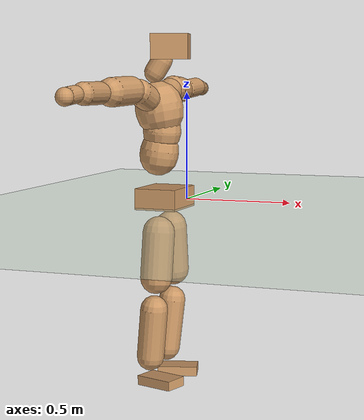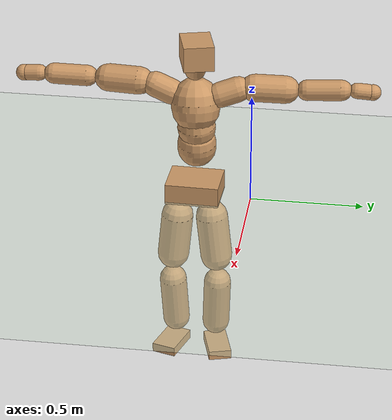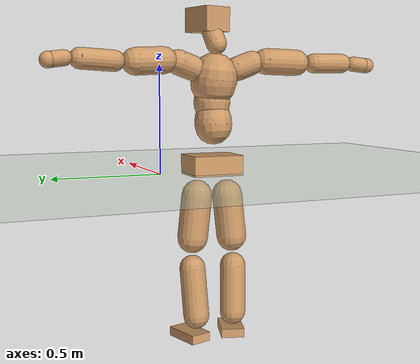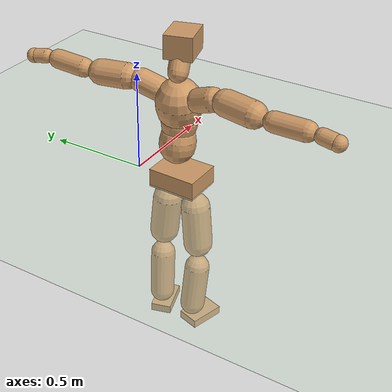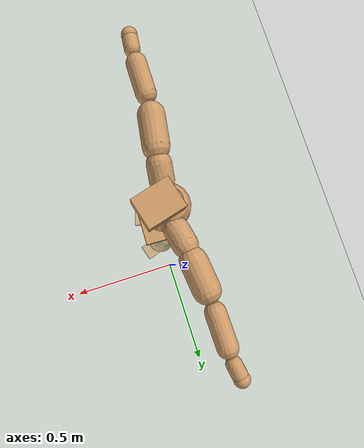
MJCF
<mujoco model="humanoid">
  <compiler coordinate="local" angle="radian"/>
  <default>
    <joint damping="0.0" armature="0.01" stiffness="0.0" limited="true"/>
    <geom conaffinity="1" condim="3" contype="7" margin="0.001" rgba="0.8 0.6 .4 1"/>
  </default>
  <asset>
    <texture type="skybox" builtin="gradient" rgb1=".4 .5 .6" rgb2="0 0 0" width="100" height="100"/>
    <texture builtin="flat" height="1278" mark="cross" markrgb="1 1 1" name="texgeom" random="0.01" rgb1="0.8 0.6 0.4" rgb2="0.8 0.6 0.4" type="cube" width="127"/>
    <texture builtin="checker" height="100" name="texplane" rgb1="0 0 0" rgb2="0.8 0.8 0.8" type="2d" width="100"/>
    <material name="MatPlane" reflectance="0.5" shininess="1" specular="1" texrepeat="60 60" texture="texplane"/>
    <material name="geom" texture="texgeom" texuniform="true"/>
  </asset>
  <worldbody>
    <light cutoff="100" diffuse="1 1 1" dir="-0 0 -1.3" directional="true" exponent="1" pos="0 0 1.3" specular=".1 .1 .1"/>
    <geom conaffinity="1" condim="3" name="floor" pos="0 0 0" rgba="0.8 0.9 0.8 1" size="100 100 .2" type="plane" material="MatPlane"/>
    <body name="Pelvis" pos="-0.0001 -0.2533 0.044">
      <freejoint name="Pelvis"/>
      <geom type="box" contype="1" conaffinity="1" density="500" pos="-0.0128 0.0003 -0.0078" size="0.0954 0.1195 0.0469" quat="0.9999 0.0000 0.0000 -0.0135" name="Pelvis"/>
      <body name="L_Hip" pos="-0.0139 0.0699 -0.0814">
        <joint name="L_Hip_x" type="hinge" pos="0 0 0" axis="1 0 0" stiffness="800" damping="80" armature="0.02" range="-180.0000 180.0000"/>
        <joint name="L_Hip_y" type="hinge" pos="0 0 0" axis="0 1 0" stiffness="800" damping="80" armature="0.02" range="-180.0000 180.0000"/>
        <joint name="L_Hip_z" type="hinge" pos="0 0 0" axis="0 0 1" stiffness="800" damping="80" armature="0.02" range="-180.0000 180.0000"/>
        <geom type="capsule" contype="1" conaffinity="1" density="500" fromto="0.0005 0.0074 -0.0678 0.0022 0.0295 -0.2711" size="0.0715" name="L_Hip"/>
        <body name="L_Knee" pos="0.0027 0.0369 -0.3388">
          <joint name="L_Knee_x" type="hinge" pos="0 0 0" axis="1 0 0" stiffness="800" damping="80" armature="0.02" range="-180.0000 180.0000"/>
          <joint name="L_Knee_y" type="hinge" pos="0 0 0" axis="0 1 0" stiffness="800" damping="80" armature="0.02" range="-180.0000 180.0000"/>
          <joint name="L_Knee_z" type="hinge" pos="0 0 0" axis="0 0 1" stiffness="800" damping="80" armature="0.02" range="-180.0000 180.0000"/>
          <geom type="capsule" contype="1" conaffinity="1" density="500" fromto="-0.0080 -0.0032 -0.0756 -0.0321 -0.0127 -0.3026" size="0.0612" name="L_Knee"/>
          <body name="L_Ankle" pos="-0.0401 -0.0159 -0.3782">
            <joint name="L_Ankle_x" type="hinge" pos="0 0 0" axis="1 0 0" stiffness="800" damping="80" armature="0.02" range="-180.0000 180.0000"/>
            <joint name="L_Ankle_y" type="hinge" pos="0 0 0" axis="0 1 0" stiffness="800" damping="80" armature="0.02" range="-180.0000 180.0000"/>
            <joint name="L_Ankle_z" type="hinge" pos="0 0 0" axis="0 0 1" stiffness="800" damping="80" armature="0.02" range="-180.0000 180.0000"/>
            <geom type="box" contype="1" conaffinity="1" density="500" pos="0.0594 0.0171 -0.0278" size="0.0906 0.0513 0.0213" quat="0.9902 0.0000 0.0000 0.1397" name="L_Ankle"/>
            <body name="L_Toe" pos="0.1187 0.0342 -0.0555">
              <joint name="L_Toe_x" type="hinge" pos="0 0 0" axis="1 0 0" stiffness="500" damping="50" armature="0.02" range="-180.0000 180.0000"/>
              <joint name="L_Toe_y" type="hinge" pos="0 0 0" axis="0 1 0" stiffness="500" damping="50" armature="0.02" range="-180.0000 180.0000"/>
              <joint name="L_Toe_z" type="hinge" pos="0 0 0" axis="0 0 1" stiffness="500" damping="50" armature="0.02" range="-180.0000 180.0000"/>
              <geom type="box" contype="1" conaffinity="1" density="500" pos="0.0000 0.0000 0.0259" size="0.0011 0.0025 0.001" quat="0.9894 0.0000 0.0000 0.1451" name="L_Toe"/>
            </body>
          </body>
        </body>
      </body>
      <body name="R_Hip" pos="-0.0101 -0.0716 -0.0873">
        <joint name="R_Hip_x" type="hinge" pos="0 0 0" axis="1 0 0" stiffness="800" damping="80" armature="0.02" range="-180.0000 180.0000"/>
        <joint name="R_Hip_y" type="hinge" pos="0 0 0" axis="0 1 0" stiffness="800" damping="80" armature="0.02" range="-180.0000 180.0000"/>
        <joint name="R_Hip_z" type="hinge" pos="0 0 0" axis="0 0 1" stiffness="800" damping="80" armature="0.02" range="-180.0000 180.0000"/>
        <geom type="capsule" contype="1" conaffinity="1" density="500" fromto="-0.0017 -0.0070 -0.0677 -0.0067 -0.0278 -0.2710" size="0.071" name="R_Hip"/>
        <body name="R_Knee" pos="-0.0084 -0.0348 -0.3387">
          <joint name="R_Knee_x" type="hinge" pos="0 0 0" axis="1 0 0" stiffness="800" damping="80" armature="0.02" range="-180.0000 180.0000"/>
          <joint name="R_Knee_y" type="hinge" pos="0 0 0" axis="0 1 0" stiffness="800" damping="80" armature="0.02" range="-180.0000 180.0000"/>
          <joint name="R_Knee_z" type="hinge" pos="0 0 0" axis="0 0 1" stiffness="800" damping="80" armature="0.02" range="-180.0000 180.0000"/>
          <geom type="capsule" contype="1" conaffinity="1" density="500" fromto="-0.0076 0.0035 -0.0741 -0.0304 0.0140 -0.2965" size="0.0612" name="R_Knee"/>
          <body name="R_Ankle" pos="-0.0381 0.0175 -0.3706">
            <joint name="R_Ankle_x" type="hinge" pos="0 0 0" axis="1 0 0" stiffness="800" damping="80" armature="0.02" range="-180.0000 180.0000"/>
            <joint name="R_Ankle_y" type="hinge" pos="0 0 0" axis="0 1 0" stiffness="800" damping="80" armature="0.02" range="-180.0000 180.0000"/>
            <joint name="R_Ankle_z" type="hinge" pos="0 0 0" axis="0 0 1" stiffness="800" damping="80" armature="0.02" range="-180.0000 180.0000"/>
            <geom type="box" contype="1" conaffinity="1" density="500" pos="0.0627 -0.0188 -0.0276" size="0.0876 0.055 0.0211" quat="0.9894 0.0000 0.0000 -0.1450" name="R_Ankle"/>
            <body name="R_Toe" pos="0.1255 -0.0376 -0.0552">
              <joint name="R_Toe_x" type="hinge" pos="0 0 0" axis="1 0 0" stiffness="500" damping="50" armature="0.02" range="-180.0000 180.0000"/>
              <joint name="R_Toe_y" type="hinge" pos="0 0 0" axis="0 1 0" stiffness="500" damping="50" armature="0.02" range="-180.0000 180.0000"/>
              <joint name="R_Toe_z" type="hinge" pos="0 0 0" axis="0 0 1" stiffness="500" damping="50" armature="0.02" range="-180.0000 180.0000"/>
              <geom type="box" contype="1" conaffinity="1" density="500" pos="0.0000 0.0000 0.0274" size="0.0012 0.0027 0.001" quat="0.9908 0.0000 0.0000 -0.1356" name="R_Toe"/>
            </body>
          </body>
        </body>
      </body>
      <body name="Torso" pos="-0.0526 0.0038 0.1219">
        <joint name="Torso_x" type="hinge" pos="0 0 0" axis="1 0 0" stiffness="1000" damping="100" armature="0.02" range="-180.0000 180.0000"/>
        <joint name="Torso_y" type="hinge" pos="0 0 0" axis="0 1 0" stiffness="1000" damping="100" armature="0.02" range="-180.0000 180.0000"/>
        <joint name="Torso_z" type="hinge" pos="0 0 0" axis="0 0 1" stiffness="1000" damping="100" armature="0.02" range="-180.0000 180.0000"/>
        <geom type="capsule" contype="1" conaffinity="1" density="500" fromto="0.0135 0.0022 0.0813 0.0090 0.0015 0.0542" size="0.0865" name="Torso"/>
        <body name="Spine" pos="0.0226 0.0037 0.1355">
          <joint name="Spine_x" type="hinge" pos="0 0 0" axis="1 0 0" stiffness="1000" damping="100" armature="0.02" range="-180.0000 180.0000"/>
          <joint name="Spine_y" type="hinge" pos="0 0 0" axis="0 1 0" stiffness="1000" damping="100" armature="0.02" range="-180.0000 180.0000"/>
          <joint name="Spine_z" type="hinge" pos="0 0 0" axis="0 0 1" stiffness="1000" damping="100" armature="0.02" range="-180.0000 180.0000"/>
          <geom type="capsule" contype="1" conaffinity="1" density="500" fromto="0.0036 -0.0015 0.0339 0.0024 -0.0010 0.0226" size="0.0849" name="Spine"/>
          <body name="Chest" pos="0.006 -0.0024 0.0565">
            <joint name="Chest_x" type="hinge" pos="0 0 0" axis="1 0 0" stiffness="1000" damping="100" armature="0.02" range="-180.0000 180.0000"/>
            <joint name="Chest_y" type="hinge" pos="0 0 0" axis="0 1 0" stiffness="1000" damping="100" armature="0.02" range="-180.0000 180.0000"/>
            <joint name="Chest_z" type="hinge" pos="0 0 0" axis="0 0 1" stiffness="1000" damping="100" armature="0.02" range="-180.0000 180.0000"/>
            <geom type="capsule" contype="1" conaffinity="1" density="500" fromto="-0.0170 -0.0047 0.0894 -0.0114 -0.0032 0.0596" size="0.1077" name="Chest"/>
            <body name="Neck" pos="-0.0427 -0.0116 0.2175">
              <joint name="Neck_x" type="hinge" pos="0 0 0" axis="1 0 0" stiffness="500" damping="50" armature="0.02" range="-180.0000 180.0000"/>
              <joint name="Neck_y" type="hinge" pos="0 0 0" axis="0 1 0" stiffness="500" damping="50" armature="0.02" range="-180.0000 180.0000"/>
              <joint name="Neck_z" type="hinge" pos="0 0 0" axis="0 0 1" stiffness="500" damping="50" armature="0.02" range="-180.0000 180.0000"/>
              <geom type="capsule" contype="1" conaffinity="1" density="500" fromto="0.0102 0.0025 0.0173 0.0410 0.0098 0.0692" size="0.0473" name="Neck"/>
              <body name="Head" pos="0.0512 0.0123 0.0865">
                <joint name="Head_x" type="hinge" pos="0 0 0" axis="1 0 0" stiffness="500" damping="50" armature="0.02" range="-180.0000 180.0000"/>
                <joint name="Head_y" type="hinge" pos="0 0 0" axis="0 1 0" stiffness="500" damping="50" armature="0.02" range="-180.0000 180.0000"/>
                <joint name="Head_z" type="hinge" pos="0 0 0" axis="0 0 1" stiffness="500" damping="50" armature="0.02" range="-180.0000 180.0000"/>
                <geom type="box" contype="1" conaffinity="1" density="500" pos="0.0266 0.0071 0.0442" size="0.0829 0.0666 0.0558" quat="0.9914 0.0000 0.0000 0.1306" name="Head"/>
              </body>
            </body>
            <body name="L_Thorax" pos="-0.017 0.0748 0.1157">
              <joint name="L_Thorax_x" type="hinge" pos="0 0 0" axis="1 0 0" stiffness="500" damping="50" armature="0.02" range="-180.0000 180.0000"/>
              <joint name="L_Thorax_y" type="hinge" pos="0 0 0" axis="0 1 0" stiffness="500" damping="50" armature="0.02" range="-180.0000 180.0000"/>
              <joint name="L_Thorax_z" type="hinge" pos="0 0 0" axis="0 0 1" stiffness="500" damping="50" armature="0.02" range="-180.0000 180.0000"/>
              <geom type="capsule" contype="1" conaffinity="1" density="500" fromto="-0.0048 0.0264 0.0088 -0.0190 0.1054 0.0354" size="0.0568" name="L_Thorax"/>
              <body name="L_Shoulder" pos="-0.0238 0.1318 0.0442">
                <joint name="L_Shoulder_x" type="hinge" pos="0 0 0" axis="1 0 0" stiffness="500" damping="50" armature="0.02" range="-720.0000 720.0000"/>
                <joint name="L_Shoulder_y" type="hinge" pos="0 0 0" axis="0 1 0" stiffness="500" damping="50" armature="0.02" range="-720.0000 720.0000"/>
                <joint name="L_Shoulder_z" type="hinge" pos="0 0 0" axis="0 0 1" stiffness="500" damping="50" armature="0.02" range="-720.0000 720.0000"/>
                <geom type="capsule" contype="1" conaffinity="1" density="500" fromto="-0.0052 0.0448 -0.0023 -0.0207 0.1790 -0.0090" size="0.0612" name="L_Shoulder"/>
                <body name="L_Elbow" pos="-0.0259 0.2238 -0.0113">
                  <joint name="L_Elbow_x" type="hinge" pos="0 0 0" axis="1 0 0" stiffness="500" damping="50" armature="0.02" range="-720.0000 720.0000"/>
                  <joint name="L_Elbow_y" type="hinge" pos="0 0 0" axis="0 1 0" stiffness="500" damping="50" armature="0.02" range="-720.0000 720.0000"/>
                  <joint name="L_Elbow_z" type="hinge" pos="0 0 0" axis="0 0 1" stiffness="500" damping="50" armature="0.02" range="-720.0000 720.0000"/>
                  <geom type="capsule" contype="1" conaffinity="1" density="500" fromto="-0.0005 0.0496 0.0029 -0.0019 0.1983 0.0118" size="0.0464" name="L_Elbow"/>
                  <body name="L_Wrist" pos="-0.0023 0.2479 0.0147">
                    <joint name="L_Wrist_x" type="hinge" pos="0 0 0" axis="1 0 0" stiffness="300" damping="30" armature="0.02" range="-180.0000 180.0000"/>
                    <joint name="L_Wrist_y" type="hinge" pos="0 0 0" axis="0 1 0" stiffness="300" damping="30" armature="0.02" range="-180.0000 180.0000"/>
                    <joint name="L_Wrist_z" type="hinge" pos="0 0 0" axis="0 0 1" stiffness="300" damping="30" armature="0.02" range="-180.0000 180.0000"/>
                    <geom type="capsule" contype="1" conaffinity="1" density="500" fromto="-0.0030 0.0173 -0.0023 -0.0121 0.0692 -0.0091" size="0.0347" name="L_Wrist"/>
                    <body name="L_Hand" pos="-0.0151 0.0865 -0.0113">
                      <joint name="L_Hand_x" type="hinge" pos="0 0 0" axis="1 0 0" stiffness="300" damping="30" armature="0.02" range="-180.0000 180.0000"/>
                      <joint name="L_Hand_y" type="hinge" pos="0 0 0" axis="0 1 0" stiffness="300" damping="30" armature="0.02" range="-180.0000 180.0000"/>
                      <joint name="L_Hand_z" type="hinge" pos="0 0 0" axis="0 0 1" stiffness="300" damping="30" armature="0.02" range="-180.0000 180.0000"/>
                      <geom type="sphere" contype="1" conaffinity="1" density="500" size="0.0358" pos="0.0000 0.0000 0.0000" name="L_Hand"/>
                    </body>
                  </body>
                </body>
              </body>
            </body>
            <body name="R_Thorax" pos="-0.0254 -0.0868 0.1136">
              <joint name="R_Thorax_x" type="hinge" pos="0 0 0" axis="1 0 0" stiffness="500" damping="50" armature="0.02" range="-180.0000 180.0000"/>
              <joint name="R_Thorax_y" type="hinge" pos="0 0 0" axis="0 1 0" stiffness="500" damping="50" armature="0.02" range="-180.0000 180.0000"/>
              <joint name="R_Thorax_z" type="hinge" pos="0 0 0" axis="0 0 1" stiffness="500" damping="50" armature="0.02" range="-180.0000 180.0000"/>
              <geom type="capsule" contype="1" conaffinity="1" density="500" fromto="-0.0027 -0.0246 0.0094 -0.0107 -0.0985 0.0377" size="0.0567" name="R_Thorax"/>
              <body name="R_Shoulder" pos="-0.0134 -0.1231 0.0472">
                <joint name="R_Shoulder_x" type="hinge" pos="0 0 0" axis="1 0 0" stiffness="500" damping="50" armature="0.02" range="-720.0000 720.0000"/>
                <joint name="R_Shoulder_y" type="hinge" pos="0 0 0" axis="0 1 0" stiffness="500" damping="50" armature="0.02" range="-720.0000 720.0000"/>
                <joint name="R_Shoulder_z" type="hinge" pos="0 0 0" axis="0 0 1" stiffness="500" damping="50" armature="0.02" range="-720.0000 720.0000"/>
                <geom type="capsule" contype="1" conaffinity="1" density="500" fromto="-0.0076 -0.0476 -0.0017 -0.0306 -0.1906 -0.0066" size="0.0617" name="R_Shoulder"/>
                <body name="R_Elbow" pos="-0.0382 -0.2382 -0.0083">
                  <joint name="R_Elbow_x" type="hinge" pos="0 0 0" axis="1 0 0" stiffness="500" damping="50" armature="0.02" range="-720.0000 720.0000"/>
                  <joint name="R_Elbow_y" type="hinge" pos="0 0 0" axis="0 1 0" stiffness="500" damping="50" armature="0.02" range="-720.0000 720.0000"/>
                  <joint name="R_Elbow_z" type="hinge" pos="0 0 0" axis="0 0 1" stiffness="500" damping="50" armature="0.02" range="-720.0000 720.0000"/>
                  <geom type="capsule" contype="1" conaffinity="1" density="500" fromto="-0.0005 -0.0496 0.0002 -0.0018 -0.1983 0.0010" size="0.0469" name="R_Elbow"/>
                  <body name="R_Wrist" pos="-0.0023 -0.2479 0.0012">
                    <joint name="R_Wrist_x" type="hinge" pos="0 0 0" axis="1 0 0" stiffness="300" damping="30" armature="0.02" range="-180.0000 180.0000"/>
                    <joint name="R_Wrist_y" type="hinge" pos="0 0 0" axis="0 1 0" stiffness="300" damping="30" armature="0.02" range="-180.0000 180.0000"/>
                    <joint name="R_Wrist_z" type="hinge" pos="0 0 0" axis="0 0 1" stiffness="300" damping="30" armature="0.02" range="-180.0000 180.0000"/>
                    <geom type="capsule" contype="1" conaffinity="1" density="500" fromto="-0.0020 -0.0180 -0.0019 -0.0079 -0.0720 -0.0074" size="0.036" name="R_Wrist"/>
                    <body name="R_Hand" pos="-0.0099 -0.09 -0.0093">
                      <joint name="R_Hand_x" type="hinge" pos="0 0 0" axis="1 0 0" stiffness="300" damping="30" armature="0.02" range="-180.0000 180.0000"/>
                      <joint name="R_Hand_y" type="hinge" pos="0 0 0" axis="0 1 0" stiffness="300" damping="30" armature="0.02" range="-180.0000 180.0000"/>
                      <joint name="R_Hand_z" type="hinge" pos="0 0 0" axis="0 0 1" stiffness="300" damping="30" armature="0.02" range="-180.0000 180.0000"/>
                      <geom type="sphere" contype="1" conaffinity="1" density="500" size="0.0368" pos="0.0000 0.0000 0.0000" name="R_Hand"/>
                    </body>
                  </body>
                </body>
              </body>
            </body>
          </body>
        </body>
      </body>
    </body>
  </worldbody>
  <actuator>
    <motor name="L_Hip_x" joint="L_Hip_x" gear="500"/>
    <motor name="L_Hip_y" joint="L_Hip_y" gear="500"/>
    <motor name="L_Hip_z" joint="L_Hip_z" gear="500"/>
    <motor name="L_Knee_x" joint="L_Knee_x" gear="500"/>
    <motor name="L_Knee_y" joint="L_Knee_y" gear="500"/>
    <motor name="L_Knee_z" joint="L_Knee_z" gear="500"/>
    <motor name="L_Ankle_x" joint="L_Ankle_x" gear="500"/>
    <motor name="L_Ankle_y" joint="L_Ankle_y" gear="500"/>
    <motor name="L_Ankle_z" joint="L_Ankle_z" gear="500"/>
    <motor name="L_Toe_x" joint="L_Toe_x" gear="500"/>
    <motor name="L_Toe_y" joint="L_Toe_y" gear="500"/>
    <motor name="L_Toe_z" joint="L_Toe_z" gear="500"/>
    <motor name="R_Hip_x" joint="R_Hip_x" gear="500"/>
    <motor name="R_Hip_y" joint="R_Hip_y" gear="500"/>
    <motor name="R_Hip_z" joint="R_Hip_z" gear="500"/>
    <motor name="R_Knee_x" joint="R_Knee_x" gear="500"/>
    <motor name="R_Knee_y" joint="R_Knee_y" gear="500"/>
    <motor name="R_Knee_z" joint="R_Knee_z" gear="500"/>
    <motor name="R_Ankle_x" joint="R_Ankle_x" gear="500"/>
    <motor name="R_Ankle_y" joint="R_Ankle_y" gear="500"/>
    <motor name="R_Ankle_z" joint="R_Ankle_z" gear="500"/>
    <motor name="R_Toe_x" joint="R_Toe_x" gear="500"/>
    <motor name="R_Toe_y" joint="R_Toe_y" gear="500"/>
    <motor name="R_Toe_z" joint="R_Toe_z" gear="500"/>
    <motor name="Torso_x" joint="Torso_x" gear="500"/>
    <motor name="Torso_y" joint="Torso_y" gear="500"/>
    <motor name="Torso_z" joint="Torso_z" gear="500"/>
    <motor name="Spine_x" joint="Spine_x" gear="500"/>
    <motor name="Spine_y" joint="Spine_y" gear="500"/>
    <motor name="Spine_z" joint="Spine_z" gear="500"/>
    <motor name="Chest_x" joint="Chest_x" gear="500"/>
    <motor name="Chest_y" joint="Chest_y" gear="500"/>
    <motor name="Chest_z" joint="Chest_z" gear="500"/>
    <motor name="Neck_x" joint="Neck_x" gear="500"/>
    <motor name="Neck_y" joint="Neck_y" gear="500"/>
    <motor name="Neck_z" joint="Neck_z" gear="500"/>
    <motor name="Head_x" joint="Head_x" gear="500"/>
    <motor name="Head_y" joint="Head_y" gear="500"/>
    <motor name="Head_z" joint="Head_z" gear="500"/>
    <motor name="L_Thorax_x" joint="L_Thorax_x" gear="500"/>
    <motor name="L_Thorax_y" joint="L_Thorax_y" gear="500"/>
    <motor name="L_Thorax_z" joint="L_Thorax_z" gear="500"/>
    <motor name="L_Shoulder_x" joint="L_Shoulder_x" gear="500"/>
    <motor name="L_Shoulder_y" joint="L_Shoulder_y" gear="500"/>
    <motor name="L_Shoulder_z" joint="L_Shoulder_z" gear="500"/>
    <motor name="L_Elbow_x" joint="L_Elbow_x" gear="500"/>
    <motor name="L_Elbow_y" joint="L_Elbow_y" gear="500"/>
    <motor name="L_Elbow_z" joint="L_Elbow_z" gear="500"/>
    <motor name="L_Wrist_x" joint="L_Wrist_x" gear="500"/>
    <motor name="L_Wrist_y" joint="L_Wrist_y" gear="500"/>
    <motor name="L_Wrist_z" joint="L_Wrist_z" gear="500"/>
    <motor name="L_Hand_x" joint="L_Hand_x" gear="500"/>
    <motor name="L_Hand_y" joint="L_Hand_y" gear="500"/>
    <motor name="L_Hand_z" joint="L_Hand_z" gear="500"/>
    <motor name="R_Thorax_x" joint="R_Thorax_x" gear="500"/>
    <motor name="R_Thorax_y" joint="R_Thorax_y" gear="500"/>
    <motor name="R_Thorax_z" joint="R_Thorax_z" gear="500"/>
    <motor name="R_Shoulder_x" joint="R_Shoulder_x" gear="500"/>
    <motor name="R_Shoulder_y" joint="R_Shoulder_y" gear="500"/>
    <motor name="R_Shoulder_z" joint="R_Shoulder_z" gear="500"/>
    <motor name="R_Elbow_x" joint="R_Elbow_x" gear="500"/>
    <motor name="R_Elbow_y" joint="R_Elbow_y" gear="500"/>
    <motor name="R_Elbow_z" joint="R_Elbow_z" gear="500"/>
    <motor name="R_Wrist_x" joint="R_Wrist_x" gear="500"/>
    <motor name="R_Wrist_y" joint="R_Wrist_y" gear="500"/>
    <motor name="R_Wrist_z" joint="R_Wrist_z" gear="500"/>
    <motor name="R_Hand_x" joint="R_Hand_x" gear="500"/>
    <motor name="R_Hand_y" joint="R_Hand_y" gear="500"/>
    <motor name="R_Hand_z" joint="R_Hand_z" gear="500"/>
  </actuator>
  <contact>
    <exclude body1="Torso" body2="Chest"/>
    <exclude body1="Head" body2="Chest"/>
    <exclude body1="R_Knee" body2="R_Toe"/>
    <exclude body1="R_Knee" body2="L_Ankle"/>
    <exclude body1="R_Knee" body2="L_Toe"/>
    <exclude body1="L_Knee" body2="L_Toe"/>
    <exclude body1="L_Knee" body2="R_Ankle"/>
    <exclude body1="L_Knee" body2="R_Toe"/>
    <exclude body1="L_Shoulder" body2="Chest"/>
    <exclude body1="R_Shoulder" body2="Chest"/>
  </contact>
  <sensor/>
  <size njmax="700" nconmax="700"/>
</mujoco>
